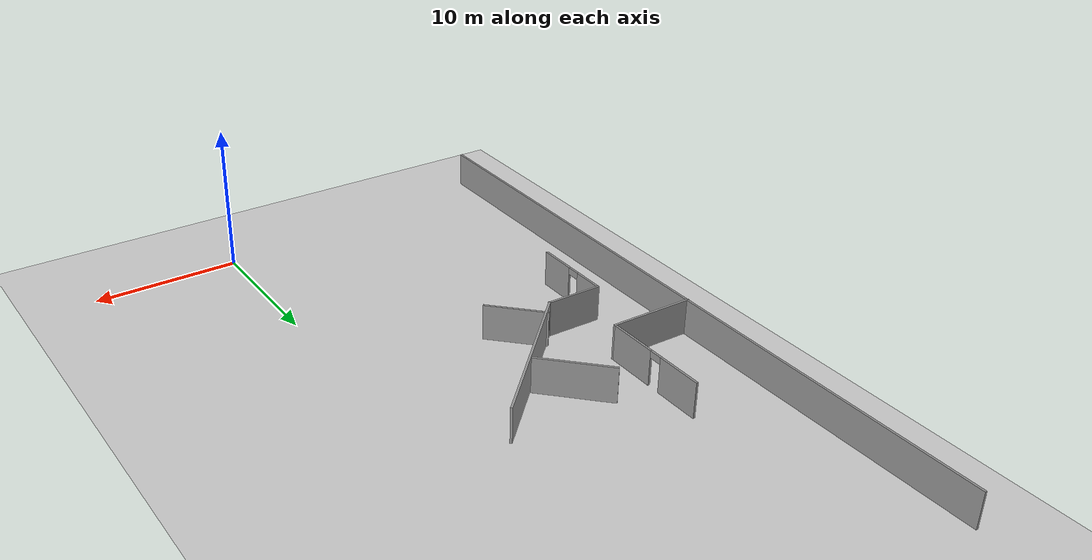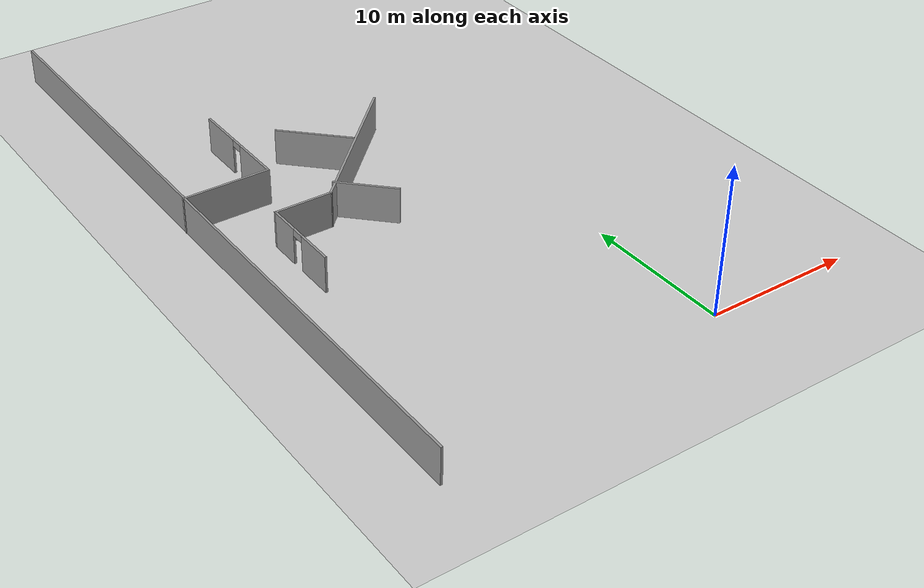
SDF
<sdf version="1.6">
 <world name="default">
  <model name="ground_plane">
   <static>1</static>
   <link name="link">
    <collision name="collision">
     <geometry><plane><normal>0 0 1</normal><size>100 100</size></plane></geometry>
     <surface>
      <contact><collide_bitmask>65535</collide_bitmask></contact>
      <friction><ode><mu>100</mu><mu2>50</mu2></ode></friction>
     </surface>
    </collision>
    <visual name="visual">
     <cast_shadows>0</cast_shadows>
     <geometry><plane><normal>0 0 1</normal><size>100 100</size></plane></geometry>
     <material>
      <script><uri>file://media/materials/scripts/gazebo.material</uri><name>Gazebo/Grey</name></script>
     </material>
    </visual>
   </link>
  </model>
  <model name="Level_1_with_doors">
   <link name="Wall_0">
    <pose>-25.5838 -0.028381 0 0 0 -1.5708</pose>
    <visual name="Wall_0_Visual">
     <pose>0 0 1.25 0 -0 0</pose>
     <geometry><box><size>50.25 0.15 2.5</size></box></geometry>
     <material>
      <script><uri>file://media/materials/scripts/gazebo.material</uri><name>Gazebo/Grey</name></script>
      <ambient>1 1 1 1</ambient>
      <shader type="pixel"/>
     </material>
     <meta><layer>0</layer></meta>
    </visual>
    <collision name="Wall_0_Collision">
     <pose>0 0 1.25 0 -0 0</pose>
     <geometry><box><size>50.25 0.15 2.5</size></box></geometry>
     <surface>
      <friction>
       <ode><mu>1</mu><mu2>1</mu2><fdir1>0 0 0</fdir1><slip1>0</slip1><slip2>0</slip2></ode>
       <torsional>
        <coefficient>1</coefficient>
        <patch_radius>0</patch_radius>
        <surface_radius>0</surface_radius>
        <use_patch_radius>1</use_patch_radius>
        <ode><slip>0</slip></ode>
       </torsional>
      </friction>
      <bounce><restitution_coefficient>0</restitution_coefficient><threshold>1e+06</threshold></bounce>
      <contact>
       <collide_without_contact>0</collide_without_contact>
       <collide_without_contact_bitmask>1</collide_without_contact_bitmask>
       <collide_bitmask>1</collide_bitmask>
       <ode>
        <soft_cfm>0</soft_cfm>
        <soft_erp>0.2</soft_erp>
        <kp>1e+13</kp>
        <kd>1</kd>
        <max_vel>0.01</max_vel>
        <min_depth>0</min_depth>
       </ode>
       <bullet>
        <split_impulse>1</split_impulse>
        <split_impulse_penetration_threshold>-0.01</split_impulse_penetration_threshold>
        <soft_cfm>0</soft_cfm>
        <soft_erp>0.2</soft_erp>
        <kp>1e+13</kp>
        <kd>1</kd>
       </bullet>
      </contact>
     </surface>
    </collision>
   </link>
   <link name="Wall_106">
    <pose>-19.7736 5.65177 0 0 0 -1.5708</pose>
    <visual name="Wall_106_Visual_1">
     <pose>2.07597 0 1.25 0 -0 0</pose>
     <geometry><box><size>3.59806 0.15 2.5</size></box></geometry>
     <material>
      <script><uri>file://media/materials/scripts/gazebo.material</uri><name>Gazebo/Grey</name></script>
      <ambient>1 1 1 1</ambient>
      <shader type="pixel"/>
     </material>
     <meta><layer>0</layer></meta>
    </visual>
    <visual name="Wall_106_Visual_2">
     <pose>-0.173056 0 2.25 0 -0 0</pose>
     <geometry><box><size>0.9 0.15 0.5</size></box></geometry>
     <material>
      <script><uri>file://media/materials/scripts/gazebo.material</uri><name>Gazebo/Grey</name></script>
      <ambient>1 1 1 1</ambient>
      <shader type="pixel"/>
     </material>
     <meta><layer>0</layer></meta>
    </visual>
    <visual name="Wall_106_Visual_0">
     <pose>-2.24903 0 1.25 0 -0 0</pose>
     <geometry><box><size>3.25194 0.15 2.5</size></box></geometry>
     <material>
      <script><uri>file://media/materials/scripts/gazebo.material</uri><name>Gazebo/Grey</name></script>
      <ambient>1 1 1 1</ambient>
      <shader type="pixel"/>
     </material>
     <meta><layer>0</layer></meta>
    </visual>
    <collision name="Wall_106_Collision_2">
     <pose>-0.173056 0 2.25 0 -0 0</pose>
     <geometry><box><size>0.9 0.15 0.5</size></box></geometry>
     <surface>
      <friction>
       <ode><mu>1</mu><mu2>1</mu2><fdir1>0 0 0</fdir1><slip1>0</slip1><slip2>0</slip2></ode>
       <torsional>
        <coefficient>1</coefficient>
        <patch_radius>0</patch_radius>
        <surface_radius>0</surface_radius>
        <use_patch_radius>1</use_patch_radius>
        <ode><slip>0</slip></ode>
       </torsional>
      </friction>
      <bounce><restitution_coefficient>0</restitution_coefficient><threshold>1e+06</threshold></bounce>
      <contact>
       <collide_without_contact>0</collide_without_contact>
       <collide_without_contact_bitmask>1</collide_without_contact_bitmask>
       <collide_bitmask>1</collide_bitmask>
       <ode>
        <soft_cfm>0</soft_cfm>
        <soft_erp>0.2</soft_erp>
        <kp>1e+13</kp>
        <kd>1</kd>
        <max_vel>0.01</max_vel>
        <min_depth>0</min_depth>
       </ode>
       <bullet>
        <split_impulse>1</split_impulse>
        <split_impulse_penetration_threshold>-0.01</split_impulse_penetration_threshold>
        <soft_cfm>0</soft_cfm>
        <soft_erp>0.2</soft_erp>
        <kp>1e+13</kp>
        <kd>1</kd>
       </bullet>
      </contact>
     </surface>
    </collision>
    <collision name="Wall_106_Collision_0">
     <pose>-2.24903 0 1.25 0 -0 0</pose>
     <geometry><box><size>3.25194 0.15 2.5</size></box></geometry>
     <surface>
      <friction>
       <ode><mu>1</mu><mu2>1</mu2><fdir1>0 0 0</fdir1><slip1>0</slip1><slip2>0</slip2></ode>
       <torsional>
        <coefficient>1</coefficient>
        <patch_radius>0</patch_radius>
        <surface_radius>0</surface_radius>
        <use_patch_radius>1</use_patch_radius>
        <ode><slip>0</slip></ode>
       </torsional>
      </friction>
      <bounce><restitution_coefficient>0</restitution_coefficient><threshold>1e+06</threshold></bounce>
      <contact>
       <collide_without_contact>0</collide_without_contact>
       <collide_without_contact_bitmask>1</collide_without_contact_bitmask>
       <collide_bitmask>1</collide_bitmask>
       <ode>
        <soft_cfm>0</soft_cfm>
        <soft_erp>0.2</soft_erp>
        <kp>1e+13</kp>
        <kd>1</kd>
        <max_vel>0.01</max_vel>
        <min_depth>0</min_depth>
       </ode>
       <bullet>
        <split_impulse>1</split_impulse>
        <split_impulse_penetration_threshold>-0.01</split_impulse_penetration_threshold>
        <soft_cfm>0</soft_cfm>
        <soft_erp>0.2</soft_erp>
        <kp>1e+13</kp>
        <kd>1</kd>
       </bullet>
      </contact>
     </surface>
    </collision>
    <collision name="Wall_106_Collision_1">
     <pose>2.07597 0 1.25 0 -0 0</pose>
     <geometry><box><size>3.59806 0.15 2.5</size></box></geometry>
     <surface>
      <friction>
       <ode><mu>1</mu><mu2>1</mu2><fdir1>0 0 0</fdir1><slip1>0</slip1><slip2>0</slip2></ode>
       <torsional>
        <coefficient>1</coefficient>
        <patch_radius>0</patch_radius>
        <surface_radius>0</surface_radius>
        <use_patch_radius>1</use_patch_radius>
        <ode><slip>0</slip></ode>
       </torsional>
      </friction>
      <bounce><restitution_coefficient>0</restitution_coefficient><threshold>1e+06</threshold></bounce>
      <contact>
       <collide_without_contact>0</collide_without_contact>
       <collide_without_contact_bitmask>1</collide_without_contact_bitmask>
       <collide_bitmask>1</collide_bitmask>
       <ode>
        <soft_cfm>0</soft_cfm>
        <soft_erp>0.2</soft_erp>
        <kp>1e+13</kp>
        <kd>1</kd>
        <max_vel>0.01</max_vel>
        <min_depth>0</min_depth>
       </ode>
       <bullet>
        <split_impulse>1</split_impulse>
        <split_impulse_penetration_threshold>-0.01</split_impulse_penetration_threshold>
        <soft_cfm>0</soft_cfm>
        <soft_erp>0.2</soft_erp>
        <kp>1e+13</kp>
        <kd>1</kd>
       </bullet>
      </contact>
     </surface>
    </collision>
   </link>
   <link name="Wall_107">
    <pose>-22.6986 1.85177 0 0 -0 3.14159</pose>
    <visual name="Wall_107_Visual">
     <pose>0 0 1.25 0 -0 0</pose>
     <geometry><box><size>6 0.15 2.5</size></box></geometry>
     <material>
      <script><uri>file://media/materials/scripts/gazebo.material</uri><name>Gazebo/Grey</name></script>
      <ambient>1 1 1 1</ambient>
      <shader type="pixel"/>
     </material>
     <meta><layer>0</layer></meta>
    </visual>
    <collision name="Wall_107_Collision">
     <pose>0 0 1.25 0 -0 0</pose>
     <geometry><box><size>6 0.15 2.5</size></box></geometry>
     <surface>
      <friction>
       <ode><mu>1</mu><mu2>1</mu2><fdir1>0 0 0</fdir1><slip1>0</slip1><slip2>0</slip2></ode>
       <torsional>
        <coefficient>1</coefficient>
        <patch_radius>0</patch_radius>
        <surface_radius>0</surface_radius>
        <use_patch_radius>1</use_patch_radius>
        <ode><slip>0</slip></ode>
       </torsional>
      </friction>
      <bounce><restitution_coefficient>0</restitution_coefficient><threshold>1e+06</threshold></bounce>
      <contact>
       <collide_without_contact>0</collide_without_contact>
       <collide_without_contact_bitmask>1</collide_without_contact_bitmask>
       <collide_bitmask>1</collide_bitmask>
       <ode>
        <soft_cfm>0</soft_cfm>
        <soft_erp>0.2</soft_erp>
        <kp>1e+13</kp>
        <kd>1</kd>
        <max_vel>0.01</max_vel>
        <min_depth>0</min_depth>
       </ode>
       <bullet>
        <split_impulse>1</split_impulse>
        <split_impulse_penetration_threshold>-0.01</split_impulse_penetration_threshold>
        <soft_cfm>0</soft_cfm>
        <soft_erp>0.2</soft_erp>
        <kp>1e+13</kp>
        <kd>1</kd>
       </bullet>
      </contact>
     </surface>
    </collision>
   </link>
   <link name="Wall_109">
    <pose>-19.8804 -2.57464 0 0 -0 3.14159</pose>
    <visual name="Wall_109_Visual">
     <pose>0 0 1.25 0 -0 0</pose>
     <geometry><box><size>4 0.15 2.5</size></box></geometry>
     <material>
      <script><uri>file://media/materials/scripts/gazebo.material</uri><name>Gazebo/Grey</name></script>
      <ambient>1 1 1 1</ambient>
      <shader type="pixel"/>
     </material>
     <meta><layer>0</layer></meta>
    </visual>
    <collision name="Wall_109_Collision">
     <pose>0 0 1.25 0 -0 0</pose>
     <geometry><box><size>4 0.15 2.5</size></box></geometry>
     <surface>
      <friction>
       <ode><mu>1</mu><mu2>1</mu2><fdir1>0 0 0</fdir1><slip1>0</slip1><slip2>0</slip2></ode>
       <torsional>
        <coefficient>1</coefficient>
        <patch_radius>0</patch_radius>
        <surface_radius>0</surface_radius>
        <use_patch_radius>1</use_patch_radius>
        <ode><slip>0</slip></ode>
       </torsional>
      </friction>
      <bounce><restitution_coefficient>0</restitution_coefficient><threshold>1e+06</threshold></bounce>
      <contact>
       <collide_without_contact>0</collide_without_contact>
       <collide_without_contact_bitmask>1</collide_without_contact_bitmask>
       <collide_bitmask>1</collide_bitmask>
       <ode>
        <soft_cfm>0</soft_cfm>
        <soft_erp>0.2</soft_erp>
        <kp>1e+13</kp>
        <kd>1</kd>
        <max_vel>0.01</max_vel>
        <min_depth>0</min_depth>
       </ode>
       <bullet>
        <split_impulse>1</split_impulse>
        <split_impulse_penetration_threshold>-0.01</split_impulse_penetration_threshold>
        <soft_cfm>0</soft_cfm>
        <soft_erp>0.2</soft_erp>
        <kp>1e+13</kp>
        <kd>1</kd>
       </bullet>
      </contact>
     </surface>
    </collision>
   </link>
   <link name="Wall_110">
    <pose>-21.8054 -5.37465 0 0 0 -1.5708</pose>
    <visual name="Wall_110_Visual_2">
     <pose>-0.199064 0 2.25 0 -0 0</pose>
     <geometry><box><size>0.9 0.15 0.5</size></box></geometry>
     <material>
      <script><uri>file://media/materials/scripts/gazebo.material</uri><name>Gazebo/Grey</name></script>
      <ambient>1 1 1 1</ambient>
      <shader type="pixel"/>
     </material>
     <meta><layer>0</layer></meta>
    </visual>
    <visual name="Wall_110_Visual_0">
     <pose>-1.76203 0 1.25 0 -0 0</pose>
     <geometry><box><size>2.22594 0.15 2.5</size></box></geometry>
     <material>
      <script><uri>file://media/materials/scripts/gazebo.material</uri><name>Gazebo/Grey</name></script>
      <ambient>1 1 1 1</ambient>
      <shader type="pixel"/>
     </material>
     <meta><layer>0</layer></meta>
    </visual>
    <visual name="Wall_110_Visual_1">
     <pose>1.56297 0 1.25 0 -0 0</pose>
     <geometry><box><size>2.62406 0.15 2.5</size></box></geometry>
     <material>
      <script><uri>file://media/materials/scripts/gazebo.material</uri><name>Gazebo/Grey</name></script>
      <ambient>1 1 1 1</ambient>
      <shader type="pixel"/>
     </material>
     <meta><layer>0</layer></meta>
    </visual>
    <collision name="Wall_110_Collision_1">
     <pose>1.56297 0 1.25 0 -0 0</pose>
     <geometry><box><size>2.62406 0.15 2.5</size></box></geometry>
     <surface>
      <friction>
       <ode><mu>1</mu><mu2>1</mu2><fdir1>0 0 0</fdir1><slip1>0</slip1><slip2>0</slip2></ode>
       <torsional>
        <coefficient>1</coefficient>
        <patch_radius>0</patch_radius>
        <surface_radius>0</surface_radius>
        <use_patch_radius>1</use_patch_radius>
        <ode><slip>0</slip></ode>
       </torsional>
      </friction>
      <bounce><restitution_coefficient>0</restitution_coefficient><threshold>1e+06</threshold></bounce>
      <contact>
       <collide_without_contact>0</collide_without_contact>
       <collide_without_contact_bitmask>1</collide_without_contact_bitmask>
       <collide_bitmask>1</collide_bitmask>
       <ode>
        <soft_cfm>0</soft_cfm>
        <soft_erp>0.2</soft_erp>
        <kp>1e+13</kp>
        <kd>1</kd>
        <max_vel>0.01</max_vel>
        <min_depth>0</min_depth>
       </ode>
       <bullet>
        <split_impulse>1</split_impulse>
        <split_impulse_penetration_threshold>-0.01</split_impulse_penetration_threshold>
        <soft_cfm>0</soft_cfm>
        <soft_erp>0.2</soft_erp>
        <kp>1e+13</kp>
        <kd>1</kd>
       </bullet>
      </contact>
     </surface>
    </collision>
    <collision name="Wall_110_Collision_0">
     <pose>-1.76203 0 1.25 0 -0 0</pose>
     <geometry><box><size>2.22594 0.15 2.5</size></box></geometry>
     <surface>
      <friction>
       <ode><mu>1</mu><mu2>1</mu2><fdir1>0 0 0</fdir1><slip1>0</slip1><slip2>0</slip2></ode>
       <torsional>
        <coefficient>1</coefficient>
        <patch_radius>0</patch_radius>
        <surface_radius>0</surface_radius>
        <use_patch_radius>1</use_patch_radius>
        <ode><slip>0</slip></ode>
       </torsional>
      </friction>
      <bounce><restitution_coefficient>0</restitution_coefficient><threshold>1e+06</threshold></bounce>
      <contact>
       <collide_without_contact>0</collide_without_contact>
       <collide_without_contact_bitmask>1</collide_without_contact_bitmask>
       <collide_bitmask>1</collide_bitmask>
       <ode>
        <soft_cfm>0</soft_cfm>
        <soft_erp>0.2</soft_erp>
        <kp>1e+13</kp>
        <kd>1</kd>
        <max_vel>0.01</max_vel>
        <min_depth>0</min_depth>
       </ode>
       <bullet>
        <split_impulse>1</split_impulse>
        <split_impulse_penetration_threshold>-0.01</split_impulse_penetration_threshold>
        <soft_cfm>0</soft_cfm>
        <soft_erp>0.2</soft_erp>
        <kp>1e+13</kp>
        <kd>1</kd>
       </bullet>
      </contact>
     </surface>
    </collision>
    <collision name="Wall_110_Collision_2">
     <pose>-0.199064 0 2.25 0 -0 0</pose>
     <geometry><box><size>0.9 0.15 0.5</size></box></geometry>
     <surface>
      <friction>
       <ode><mu>1</mu><mu2>1</mu2><fdir1>0 0 0</fdir1><slip1>0</slip1><slip2>0</slip2></ode>
       <torsional>
        <coefficient>1</coefficient>
        <patch_radius>0</patch_radius>
        <surface_radius>0</surface_radius>
        <use_patch_radius>1</use_patch_radius>
        <ode><slip>0</slip></ode>
       </torsional>
      </friction>
      <bounce><restitution_coefficient>0</restitution_coefficient><threshold>1e+06</threshold></bounce>
      <contact>
       <collide_without_contact>0</collide_without_contact>
       <collide_without_contact_bitmask>1</collide_without_contact_bitmask>
       <collide_bitmask>1</collide_bitmask>
       <ode>
        <soft_cfm>0</soft_cfm>
        <soft_erp>0.2</soft_erp>
        <kp>1e+13</kp>
        <kd>1</kd>
        <max_vel>0.01</max_vel>
        <min_depth>0</min_depth>
       </ode>
       <bullet>
        <split_impulse>1</split_impulse>
        <split_impulse_penetration_threshold>-0.01</split_impulse_penetration_threshold>
        <soft_cfm>0</soft_cfm>
        <soft_erp>0.2</soft_erp>
        <kp>1e+13</kp>
        <kd>1</kd>
       </bullet>
      </contact>
     </surface>
    </collision>
   </link>
   <link name="Wall_87">
    <pose>-13.6708 1.59619 0 0 -0 0.771946</pose>
    <visual name="Wall_87_Visual">
     <pose>0 0 1.25 0 -0 0</pose>
     <geometry><box><size>12.1081 0.15 2.5</size></box></geometry>
     <material>
      <script><uri>file://media/materials/scripts/gazebo.material</uri><name>Gazebo/Grey</name></script>
      <ambient>1 1 1 1</ambient>
      <shader type="pixel"/>
     </material>
     <meta><layer>0</layer></meta>
    </visual>
    <collision name="Wall_87_Collision">
     <pose>0 0 1.25 0 -0 0</pose>
     <geometry><box><size>12.1081 0.15 2.5</size></box></geometry>
     <surface>
      <friction>
       <ode><mu>1</mu><mu2>1</mu2><fdir1>0 0 0</fdir1><slip1>0</slip1><slip2>0</slip2></ode>
       <torsional>
        <coefficient>1</coefficient>
        <patch_radius>0</patch_radius>
        <surface_radius>0</surface_radius>
        <use_patch_radius>1</use_patch_radius>
        <ode><slip>0</slip></ode>
       </torsional>
      </friction>
      <bounce><restitution_coefficient>0</restitution_coefficient><threshold>1e+06</threshold></bounce>
      <contact>
       <collide_without_contact>0</collide_without_contact>
       <collide_without_contact_bitmask>1</collide_without_contact_bitmask>
       <collide_bitmask>1</collide_bitmask>
       <ode>
        <soft_cfm>0</soft_cfm>
        <soft_erp>0.2</soft_erp>
        <kp>1e+13</kp>
        <kd>1</kd>
        <max_vel>0.01</max_vel>
        <min_depth>0</min_depth>
       </ode>
       <bullet>
        <split_impulse>1</split_impulse>
        <split_impulse_penetration_threshold>-0.01</split_impulse_penetration_threshold>
        <soft_cfm>0</soft_cfm>
        <soft_erp>0.2</soft_erp>
        <kp>1e+13</kp>
        <kd>1</kd>
       </bullet>
      </contact>
     </surface>
    </collision>
   </link>
   <link name="Wall_95">
    <pose>-15.7166 -3.08104 0 0 0 -0.785398</pose>
    <visual name="Wall_95_Visual">
     <pose>0 0 1.25 0 -0 0</pose>
     <geometry><box><size>4.25 0.15 2.5</size></box></geometry>
     <material>
      <script><uri>file://media/materials/scripts/gazebo.material</uri><name>Gazebo/Grey</name></script>
      <ambient>1 1 1 1</ambient>
      <shader type="pixel"/>
     </material>
     <meta><layer>0</layer></meta>
    </visual>
    <collision name="Wall_95_Collision">
     <pose>0 0 1.25 0 -0 0</pose>
     <geometry><box><size>4.25 0.15 2.5</size></box></geometry>
     <surface>
      <friction>
       <ode><mu>1</mu><mu2>1</mu2><fdir1>0 0 0</fdir1><slip1>0</slip1><slip2>0</slip2></ode>
       <torsional>
        <coefficient>1</coefficient>
        <patch_radius>0</patch_radius>
        <surface_radius>0</surface_radius>
        <use_patch_radius>1</use_patch_radius>
        <ode><slip>0</slip></ode>
       </torsional>
      </friction>
      <bounce><restitution_coefficient>0</restitution_coefficient><threshold>1e+06</threshold></bounce>
      <contact>
       <collide_without_contact>0</collide_without_contact>
       <collide_without_contact_bitmask>1</collide_without_contact_bitmask>
       <collide_bitmask>1</collide_bitmask>
       <ode>
        <soft_cfm>0</soft_cfm>
        <soft_erp>0.2</soft_erp>
        <kp>1e+13</kp>
        <kd>1</kd>
        <max_vel>0.01</max_vel>
        <min_depth>0</min_depth>
       </ode>
       <bullet>
        <split_impulse>1</split_impulse>
        <split_impulse_penetration_threshold>-0.01</split_impulse_penetration_threshold>
        <soft_cfm>0</soft_cfm>
        <soft_erp>0.2</soft_erp>
        <kp>1e+13</kp>
        <kd>1</kd>
       </bullet>
      </contact>
     </surface>
    </collision>
   </link>
   <link name="Wall_99">
    <pose>-15.1349 3.97627 0 0 -0 2.35619</pose>
    <visual name="Wall_99_Visual">
     <pose>0 0 1.25 0 -0 0</pose>
     <geometry><box><size>5.25 0.15 2.5</size></box></geometry>
     <material>
      <script><uri>file://media/materials/scripts/gazebo.material</uri><name>Gazebo/Grey</name></script>
      <ambient>1 1 1 1</ambient>
      <shader type="pixel"/>
     </material>
     <meta><layer>0</layer></meta>
    </visual>
    <collision name="Wall_99_Collision">
     <pose>0 0 1.25 0 -0 0</pose>
     <geometry><box><size>5.25 0.15 2.5</size></box></geometry>
     <surface>
      <friction>
       <ode><mu>1</mu><mu2>1</mu2><fdir1>0 0 0</fdir1><slip1>0</slip1><slip2>0</slip2></ode>
       <torsional>
        <coefficient>1</coefficient>
        <patch_radius>0</patch_radius>
        <surface_radius>0</surface_radius>
        <use_patch_radius>1</use_patch_radius>
        <ode><slip>0</slip></ode>
       </torsional>
      </friction>
      <bounce><restitution_coefficient>0</restitution_coefficient><threshold>1e+06</threshold></bounce>
      <contact>
       <collide_without_contact>0</collide_without_contact>
       <collide_without_contact_bitmask>1</collide_without_contact_bitmask>
       <collide_bitmask>1</collide_bitmask>
       <ode>
        <soft_cfm>0</soft_cfm>
        <soft_erp>0.2</soft_erp>
        <kp>1e+13</kp>
        <kd>1</kd>
        <max_vel>0.01</max_vel>
        <min_depth>0</min_depth>
       </ode>
       <bullet>
        <split_impulse>1</split_impulse>
        <split_impulse_penetration_threshold>-0.01</split_impulse_penetration_threshold>
        <soft_cfm>0</soft_cfm>
        <soft_erp>0.2</soft_erp>
        <kp>1e+13</kp>
        <kd>1</kd>
       </bullet>
      </contact>
     </surface>
    </collision>
   </link>
   <static>1</static>
   <pose>4.79959 22.5424 0 0 -0 0</pose>
  </model>
 </world>
</sdf>
